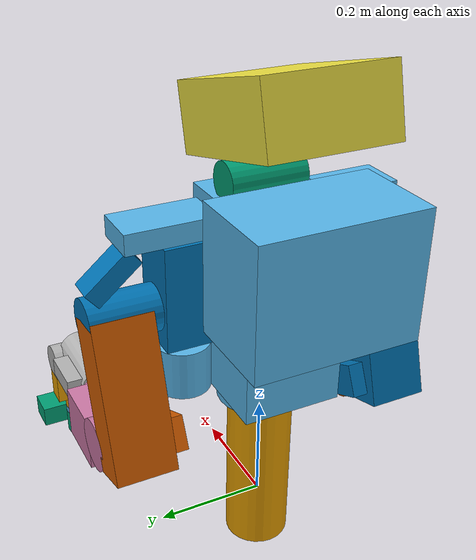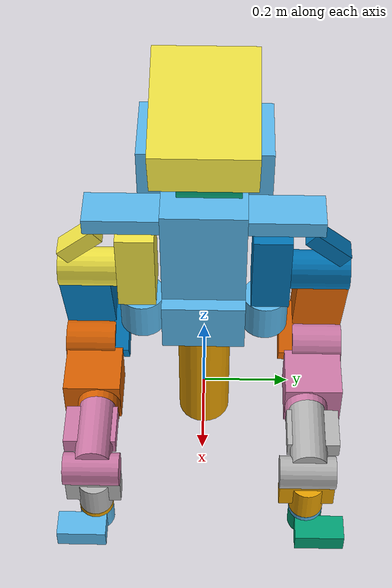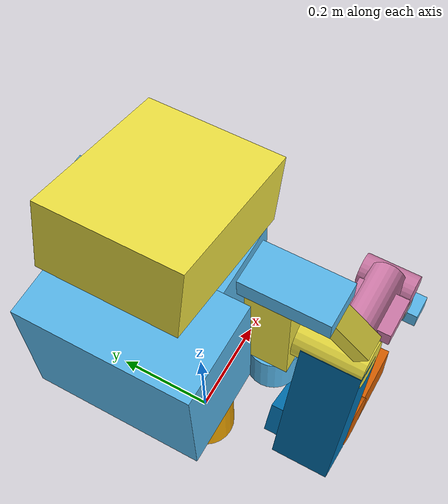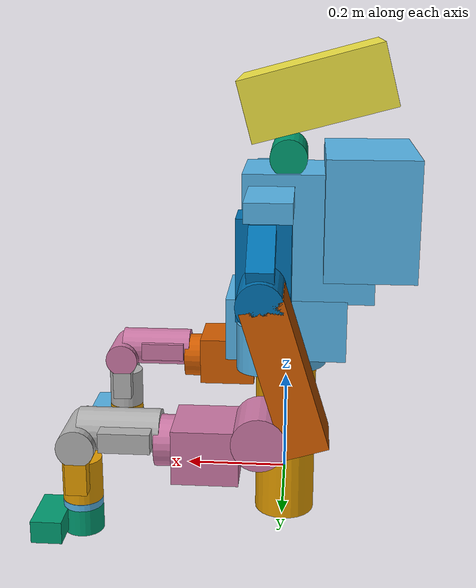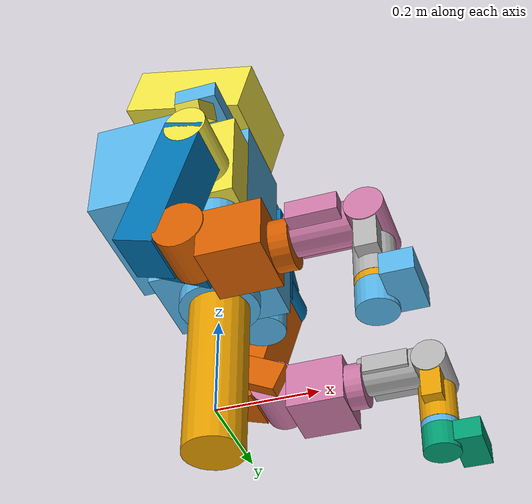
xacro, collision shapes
<?xml version="1.0"?>
<robot xmlns:xacro="http://ros.org/wiki/xacro">

  <xacro:include filename="$(find nextagea_description)/urdf/common.xacro" />

  <xacro:property name="namespace" default="/nextagea/" />
  <xacro:property name="nextagea_gazebo_ros_control" default="true" />

  <xacro:gazebo_nx_link name="WAIST" color="Black" />
  <link name="WAIST">
    <visual>
      <origin xyz="0 0 0" rpy="0 0 0"/>
      <geometry>
	      <mesh filename="package://nextagea_description/urdf/meshes/WAIST_Link_mesh.dae"/>
      </geometry>
    </visual>
    <collision>
      <origin xyz="0.0 0 0.098" rpy="0 0 0"/>
      <geometry>
        <cylinder length="0.376" radius="0.06"/>
      </geometry>
    </collision>
    <inertial>
      <mass value="5" />
      <origin xyz="0 0 0.15" rpy="0 0 0"/>
      <xacro:nxa_box_inertia_def x="0.2" y="0.2" z="0.3" mass="5"/>
    </inertial>
  </link>

  <xacro:gazebo_nx_link name="CHEST_JOINT0_Link" color="Black" />
  <link name="CHEST_JOINT0_Link">
    <visual>
      <origin xyz="0 0 0" rpy="0 0 0"/>
      <geometry>
	      <mesh filename="package://nextagea_description/urdf/meshes/CHEST_JOINT0_Link_mesh.dae"/>
      </geometry>
    </visual>
    <collision>
      <origin xyz="0 0 0.1575" rpy="0 0 0"/>
      <geometry>
        <cylinder length="0.385" radius="0.08"/>
      </geometry>
    </collision>
    <collision>
      <origin xyz="0.04 0.135 0.0423" rpy="0 0 0"/>
      <geometry>
        <cylinder length="0.09" radius="0.05"/>
      </geometry>
    </collision>
    <collision>
      <origin xyz="0.04 -0.135 0.0423" rpy="0 0 0"/>
      <geometry>
        <cylinder length="0.09" radius="0.05"/>
      </geometry>
    </collision>
    <collision>
      <origin xyz="0 0 0.055" rpy="0 0 0"/>
      <geometry>
        <box size="0.23 0.18 0.12"/>
      </geometry>
    </collision>
    <collision>
      <origin xyz="-0.04 0 0.2325" rpy="0 0 0"/>
      <geometry>
        <box size="0.25 0.18 0.245"/>
      </geometry>
    </collision>
    <collision>
      <origin xyz="-0.1525 0 0.279" rpy="0 0 0"/>
      <geometry>
        <box size="0.17 0.29 0.225"/>
      </geometry>
    </collision>
    <collision>
      <origin xyz="0.03 0 0.315" rpy="0 0 0"/>
      <geometry>
        <box size="0.085 0.5 0.0365"/>
      </geometry>
    </collision>
    <inertial>
      <mass value="10.0" />
      <origin xyz="0 0 0.2" rpy="0 -0 0"/>
      <xacro:nxa_box_inertia_def x="0.25" y="0.25" z="0.3" mass="10"/>
    </inertial>
  </link>

  <xacro:gazebo_nx_link name="HEAD_JOINT0_Link" color="Black" />
  <link name="HEAD_JOINT0_Link">
    <visual>
      <origin xyz="0 0 0" rpy="0 0 0"/>
      <geometry>
	      <mesh filename="package://nextagea_description/urdf/meshes/HEAD_JOINT0_Link_mesh.dae"/>
      </geometry>
    </visual>
    <collision>
      <origin xyz="0 0.01 0.08" rpy="1.57079 0 0"/>
      <geometry>
        <cylinder length="0.135" radius="0.035"/>
      </geometry>
    </collision>
     <inertial>
      <mass value="0.317929" />
      <origin xyz="0 0.00547848 0" rpy="0 -0 0"/>
      <xacro:nxa_box_inertia_def x="0.1" y="0.1" z="0.1" mass="0.317929"/>
    </inertial>
  </link>

  <xacro:gazebo_nx_link name="HEAD_JOINT1_Link" color="Black" />
  <link name="HEAD_JOINT1_Link">
    <visual>
      <origin xyz="0 0 0" rpy="0 0 0"/>
      <geometry>
	      <mesh filename="package://nextagea_description/urdf/meshes/HEAD_JOINT1_Link_mesh.dae"/>
      </geometry>
    </visual>
    <collision>
      <origin xyz="-0.05 0 0.12" rpy="0 0.26 0"/>
      <geometry>
        <box size="0.27 0.22 0.115"/>
      </geometry>
    </collision>
    <inertial>
      <mass value="0.4" />
      <origin xyz="-0.05 0 0.12" rpy="0 0.26 0"/>
      <xacro:nxa_box_inertia_def x="0.27" y="0.22" z="0.115" mass="0.4"/>
    </inertial>
  </link>

  <xacro:gazebo_nx_link name="LARM_JOINT0_Link" color="Black" />
  <link name="LARM_JOINT0_Link">
    <visual>
      <origin xyz="0 0 0" rpy="0 0 0"/>
      <geometry>
	      <mesh filename="package://nextagea_description/urdf/meshes/LARM_JOINT0_Link_mesh.dae"/>
      </geometry>
    </visual>
    <collision>
      <origin xyz="0 0.00775 0.095" rpy="0 0 0"/>
      <geometry>
        <box size="0.1 0.0815 0.19"/>
      </geometry>
    </collision>
    <collision>
      <origin xyz="0 0.0875 0.066" rpy="1.57079 0 0"/>
      <geometry>
        <cylinder length="0.175" radius="0.042"/>
      </geometry>
    </collision>
    <collision>
      <origin xyz="0 0.125 0.145" rpy="-0.7 0 0"/>
      <geometry>
        <box size="0.048 0.1 0.035"/>
      </geometry>
    </collision>
    <inertial>
      <mass value="1.32626" />
      <origin xyz="0.0 0.05 0.05" rpy="0 -0 0"/>
      <inertia ixx="0.00207537" ixy="0.00011276" ixz="8.927e-05" iyy="0.00240295" iyz="-4.57e-05" izz="0.00141912"/>
    </inertial>
  </link>

  <xacro:gazebo_nx_link name="LARM_JOINT1_Link" color="Black" />
  <link name="LARM_JOINT1_Link">
    <visual>
      <origin xyz="0 0 0" rpy="0 0 0"/>
      <geometry>
	      <mesh filename="package://nextagea_description/urdf/meshes/LARM_JOINT1_Link_mesh.dae"/>
      </geometry>
    </visual>
    <collision>
      <origin xyz="-0.043 0.12 -0.13" rpy="0 0.3 0"/>
      <geometry>
        <box size="0.08 0.11 0.28"/>
      </geometry>
    </collision>
    <collision>
      <origin xyz="-0.03 0.0518 -0.236" rpy="0 0.45 0"/>
      <geometry>
        <box size="0.122 0.0338 0.062"/>
      </geometry>
    </collision>
     <inertial>
      <mass value="1.14898" />
      <origin xyz="-0.04 0.1 -0.12" rpy="0 -0 0"/>
      <inertia ixx="0.0154168" ixy="9.95417e-07" ixz="3.38147e-06" iyy="0.0147117" iyz="0.00213719" izz="0.0012658"/>
    </inertial>
  </link>

  <xacro:gazebo_nx_link name="LARM_JOINT2_Link" color="Black" />
  <link name="LARM_JOINT2_Link">
    <visual>
      <origin xyz="0 0 0" rpy="0 0 0"/>
      <geometry>
	      <mesh filename="package://nextagea_description/urdf/meshes/LARM_JOINT2_Link_mesh.dae"/>
      </geometry>
    </visual>
    <collision>
      <origin xyz="0 0.025 0" rpy="1.57079 0 0"/>
      <geometry>
        <cylinder length="0.11" radius="0.049"/>
      </geometry>
    </collision>
    <collision>
      <origin xyz="0.0945 0.015 -0.03" rpy="0 0 0"/>
      <geometry>
        <box size="0.119 0.125 0.1"/>
      </geometry>
    </collision>
    <collision>
      <origin xyz="0.17 0 -0.03" rpy="0 1.57079 0"/>
      <geometry>
        <cylinder length="0.04" radius="0.047"/>
      </geometry>
    </collision>
    <inertial>
      <mass value="0.577518" />
      <origin xyz="0.1 0.01167107 -0.04" rpy="0 -0 0"/>
      <inertia ixx="0.00143966" ixy="-3e-07" ixz="1.2e-06" iyy="0.00141763" iyz="-7.596e-05" izz="0.0001972"/>
    </inertial>
  </link>

  <xacro:gazebo_nx_link name="LARM_JOINT3_Link" color="Black" />
  <link name="LARM_JOINT3_Link">
    <visual>
      <origin xyz="0 0 0" rpy="0 0 0"/>
      <geometry>
	      <mesh filename="package://nextagea_description/urdf/meshes/LARM_JOINT3_Link_mesh.dae"/>
      </geometry>
    </visual>
    <collision>
      <origin xyz="0.1495 -0.003 0" rpy="1.57079 0 0"/>
      <geometry>
        <cylinder length="0.12" radius="0.035"/>
      </geometry>
    </collision>
    <collision>
      <origin xyz="0.075 0.0 0.018" rpy="0 1.57079 0"/>
      <geometry>
        <cylinder length="0.15" radius="0.04"/>
      </geometry>
    </collision>
    <collision>
      <origin xyz="0.0585 0.01 0.0185" rpy="0 0 0"/>
      <geometry>
        <box size="0.093 0.112 0.037"/>
      </geometry>
    </collision>
    <inertial>
      <mass value="0.457418" />
      <origin xyz="0.1 -0.00395812 -0.00273" rpy="0 -0 0"/>
      <inertia ixx="0.00069205" ixy="3e-08" ixz="5.2e-07" iyy="0.00068903" iyz="-1.915e-05" izz="0.00013509"/>
    </inertial>
  </link>

  <xacro:gazebo_nx_link name="LARM_JOINT4_Link" color="Black" />
  <link name="LARM_JOINT4_Link">
    <visual>
      <origin xyz="0 0 0" rpy="0 0 0"/>
      <geometry>
	      <mesh filename="package://nextagea_description/urdf/meshes/LARM_JOINT4_Link_mesh.dae"/>
      </geometry>
    </visual>
    <collision>
      <origin xyz="0 -0.002 -0.06" rpy="0 0 0"/>
      <geometry>
        <box size="0.04 0.118 0.06"/>
      </geometry>
    </collision>
    <collision>
      <origin xyz="0 0 -0.08" rpy="0 0 0"/>
      <geometry>
        <cylinder length="0.08" radius="0.037"/>
      </geometry>
    </collision>
    <inertial>
      <mass value="0.418434" />
      <origin xyz="0.00243131 0.00379733 -0.0577036" rpy="0 -0 0"/>
      <inertia ixx="0.00052016" ixy="1.69e-06" ixz="7.9e-06" iyy="0.00050569" iyz="-5.377e-05" izz="0.00014004"/>
    </inertial>
  </link>

  <xacro:gazebo_nx_link name="LARM_JOINT5_Link" color="Black" />
  <link name="LARM_JOINT5_Link">
    <visual>
      <origin xyz="0 0 0" rpy="0 0 0"/>
      <geometry>
	      <mesh filename="package://nextagea_description/urdf/meshes/LARM_JOINT5_Link_mesh.dae"/>
      </geometry>
    </visual>
    <collision>
      <origin xyz="0 0 0.0065" rpy="0 0 0"/>
      <geometry>
        <cylinder length="0.013" radius="0.037"/>
      </geometry>
    </collision>
    <inertial>
      <mass value="1.05156" />
      <origin xyz="0.0 0.0 -0.08" rpy="0 -0 0"/>
      <inertia ixx="0.00194072" ixy="1.1e-07" ixz="-0.00042482" iyy="0.00209392" iyz="1.2e-07" izz="0.00035788"/>
    </inertial>
  </link>

  <xacro:gazebo_nx_link name="LARM_camera_Link" color="Black" />
  <link name="LARM_camera_Link">
    <visual>
      <origin xyz="0 0 0" rpy="0 0 0"/>
      <geometry>
        <mesh filename="package://nextagea_description/urdf/meshes/L_CAM.dae"/>
      </geometry>
    </visual>
    <collision>
      <origin xyz="0 0 -0.025" rpy="0 0 0"/>
      <geometry>
        <cylinder length="0.05" radius="0.037"/>
      </geometry>
    </collision>
    <collision>
      <origin xyz="0.0525 0.029 -0.02" rpy="0 0 0"/>
      <geometry>
        <box size="0.057 0.106 0.042"/>
      </geometry>
    </collision>
    <inertial>
      <mass value="1.05156" />
      <origin xyz="0.0 0.0 -0.08" rpy="0 -0 0"/>
      <inertia ixx="0.00194072" ixy="1.1e-07" ixz="-0.00042482" iyy="0.00209392" iyz="1.2e-07" izz="0.00035788"/>
    </inertial>
  </link>

  <xacro:gazebo_nx_link name="RARM_JOINT0_Link" color="Black" />
  <link name="RARM_JOINT0_Link">
    <visual>
      <origin xyz="0 0 0" rpy="0 0 0"/>
      <geometry>
	      <mesh filename="package://nextagea_description/urdf/meshes/RARM_JOINT0_Link_mesh.dae"/>
      </geometry>
    </visual>
    <collision>
      <origin xyz="0 -0.00775 0.095" rpy="0 0 0"/>
      <geometry>
        <box size="0.1 0.0815 0.19"/>
      </geometry>
    </collision>
    <collision>
      <origin xyz="0 -0.0875 0.066" rpy="1.57079 0 0"/>
      <geometry>
        <cylinder length="0.175" radius="0.042"/>
      </geometry>
    </collision>
    <collision>
      <origin xyz="0 -0.125 0.145" rpy="0.7 0 0"/>
      <geometry>
        <box size="0.048 0.1 0.035"/>
      </geometry>
    </collision>
    <inertial>
      <mass value="1.32626" />
      <origin xyz="0.0 -0.05 0.05" rpy="0 -0 0"/>
      <inertia ixx="0.00207537" ixy="-0.00011276" ixz="8.927e-05" iyy="0.00240295" iyz="4.57e-05" izz="0.00141912"/>
    </inertial>
  </link>

  <xacro:gazebo_nx_link name="RARM_JOINT1_Link" color="Black" />
  <link name="RARM_JOINT1_Link">
    <visual>
      <origin xyz="0 0 0" rpy="0 0 0"/>
      <geometry>
	      <mesh filename="package://nextagea_description/urdf/meshes/RARM_JOINT1_Link_mesh.dae"/>
      </geometry>
    </visual>
    <collision>
      <origin xyz="-0.043 -0.12 -0.13" rpy="0 0.3 0"/>
      <geometry>
        <box size="0.08 0.11 0.28"/>
      </geometry>
    </collision>
    <collision>
      <origin xyz="-0.03 -0.0518 -0.236" rpy="0 0.45 0"/>
      <geometry>
        <box size="0.122 0.0338 0.062"/>
      </geometry>
    </collision>
    <inertial>
      <mass value="1.14898" />
      <origin xyz="-0.04 -0.1 -0.12" rpy="0 -0 0"/>
      <inertia ixx="0.0154168" ixy="-9.95417e-07" ixz="3.38147e-06" iyy="0.0147117" iyz="-0.00213719" izz="0.0012658"/>
    </inertial>
  </link>

  <xacro:gazebo_nx_link name="RARM_JOINT2_Link" color="Black" />
  <link name="RARM_JOINT2_Link">
    <visual>
      <origin xyz="0 0 0" rpy="0 0 0"/>
      <geometry>
	      <mesh filename="package://nextagea_description/urdf/meshes/RARM_JOINT2_Link_mesh.dae"/>
      </geometry>
    </visual>
    <collision>
      <origin xyz="0 -0.025 0" rpy="1.57079 0 0"/>
      <geometry>
        <cylinder length="0.11" radius="0.049"/>
      </geometry>
    </collision>
    <collision>
      <origin xyz="0.0945 -0.015 -0.03" rpy="0 0 0"/>
      <geometry>
        <box size="0.119 0.125 0.1"/>
      </geometry>
    </collision>
    <collision>
      <origin xyz="0.17 0 -0.03" rpy="0 1.57079 0"/>
      <geometry>
        <cylinder length="0.04" radius="0.047"/>
      </geometry>
    </collision>
    <inertial>
      <mass value="0.577518" />
      <origin xyz="0.1 -0.01167107 -0.04" rpy="0 -0 0"/>
      <inertia ixx="0.00143966" ixy="3e-07" ixz="1.2e-06" iyy="0.00141763" iyz="7.596e-05" izz="0.0001972"/>
    </inertial>
  </link>

  <xacro:gazebo_nx_link name="RARM_JOINT3_Link" color="Black" />
  <link name="RARM_JOINT3_Link">
    <visual>
      <origin xyz="0 0 0" rpy="0 0 0"/>
      <geometry>
	      <mesh filename="package://nextagea_description/urdf/meshes/RARM_JOINT3_Link_mesh.dae"/>
      </geometry>
    </visual>
    <collision>
      <origin xyz="0.1495 -0.003 0" rpy="1.57079 0 0"/>
      <geometry>
        <cylinder length="0.12" radius="0.035"/>
      </geometry>
    </collision>
    <collision>
      <origin xyz="0.075 0.0 0.018" rpy="0 1.57079 0"/>
      <geometry>
        <cylinder length="0.15" radius="0.04"/>
      </geometry>
    </collision>
    <collision>
      <origin xyz="0.0585 -0.01 0.0185" rpy="0 0 0"/>
      <geometry>
        <box size="0.093 0.112 0.037"/>
      </geometry>
    </collision>
    <inertial>
      <mass value="0.457418" />
      <origin xyz="0.1 0.00395812 -0.00273" rpy="0 -0 0"/>
      <inertia ixx="0.00069205" ixy="-3e-08" ixz="5.2e-07" iyy="0.00068903" iyz="1.915e-05" izz="0.00013509"/>
    </inertial>
  </link>

  <xacro:gazebo_nx_link name="RARM_JOINT4_Link" color="Black" />
  <link name="RARM_JOINT4_Link">
    <visual>
      <origin xyz="0 0 0" rpy="0 0 0"/>
      <geometry>
	      <mesh filename="package://nextagea_description/urdf/meshes/RARM_JOINT4_Link_mesh.dae"/>
      </geometry>
    </visual>
    <collision>
      <origin xyz="0 -0.002 -0.06" rpy="0 0 0"/>
      <geometry>
        <box size="0.04 0.118 0.06"/>
      </geometry>
    </collision>
    <collision>
      <origin xyz="0 0 -0.08" rpy="0 0 0"/>
      <geometry>
        <cylinder length="0.08" radius="0.037"/>
      </geometry>
    </collision>
    <inertial>
      <mass value="0.418434" />
      <origin xyz="0.00243131 -0.00379733 -0.0577036" rpy="0 -0 0"/>
      <inertia ixx="0.00052016" ixy="-1.69e-06" ixz="7.9e-06" iyy="0.00050569" iyz="5.377e-05" izz="0.00014004"/>
    </inertial>
  </link>

  <xacro:gazebo_nx_link name="RARM_JOINT5_Link" color="Black" />
  <link name="RARM_JOINT5_Link">
    <visual>
      <origin xyz="0 0 0" rpy="0 0 0"/>
      <geometry>
	      <mesh filename="package://nextagea_description/urdf/meshes/RARM_JOINT5_Link_mesh.dae"/>
      </geometry>
    </visual>
    <collision>
      <origin xyz="0 0 0.0065" rpy="0 0 0"/>
      <geometry>
        <cylinder length="0.013" radius="0.037"/>
      </geometry>
    </collision>
    <inertial>
      <mass value="1.05156" />
      <origin xyz="0.0 0.0 -0.08" rpy="0 -0 0"/>
      <inertia ixx="0.00194072" ixy="-1.1e-07" ixz="-0.00042482" iyy="0.00209392" iyz="-1.2e-07" izz="0.00035788"/>
    </inertial>
  </link>

  <xacro:gazebo_nx_link name="RARM_camera_Link" color="Black" />
  <link name="RARM_camera_Link">
    <visual>
      <origin xyz="0 0 0" rpy="0 0 0"/>
      <geometry>
        <mesh filename="package://nextagea_description/urdf/meshes/R_CAM.dae"/>
      </geometry>
    </visual>
    <collision>
      <origin xyz="0 0 -0.025" rpy="0 0 0"/>
      <geometry>
        <cylinder length="0.05" radius="0.037"/>
      </geometry>
    </collision>
    <collision>
      <origin xyz="0.0525 -0.029 -0.02" rpy="0 0 0"/>
      <geometry>
        <box size="0.057 0.106 0.042"/>
      </geometry>
    </collision>
    <inertial>
      <mass value="1.05156" />
      <origin xyz="0.0 0.0 -0.08" rpy="0 -0 0"/>
      <inertia ixx="0.00194072" ixy="-1.1e-07" ixz="-0.00042482" iyy="0.00209392" iyz="-1.2e-07" izz="0.00035788"/>
    </inertial>
  </link>

  <xacro:transmission_nx_joint name="CHEST_JOINT0" />
  <joint name="CHEST_JOINT0" type="revolute">
    <parent link="WAIST"/>
    <child link="CHEST_JOINT0_Link"/>
    <origin xyz="0 0 0.267" rpy="0 0 0"/>
    <axis xyz="0 0 1"/>
    <limit lower="-3.14159" upper="3.14159" effort="100" velocity="1.0"/>
    <dynamics damping="0.2" friction="0"/>
  </joint>

  <xacro:transmission_nx_joint name="HEAD_JOINT0" />
  <joint name="HEAD_JOINT0" type="revolute">
    <parent link="CHEST_JOINT0_Link"/>
    <child link="HEAD_JOINT0_Link"/>
    <origin xyz="0 0 0.302" rpy="0 0 0"/>
    <axis xyz="0 0 1"/>
    <limit lower="-1.22173" upper="1.22173" effort="100" velocity="1.0"/>
  </joint>

  <xacro:transmission_nx_joint name="HEAD_JOINT1" />
  <joint name="HEAD_JOINT1" type="revolute">
    <parent link="HEAD_JOINT0_Link"/>
    <child link="HEAD_JOINT1_Link"/>
    <origin xyz="0 0 0.08" rpy="0 0 0"/>
    <axis xyz="0 1 0"/>
    <limit lower="-0.401425" upper="1.308997" effort="100" velocity="1.0"/>
  </joint>

  <xacro:transmission_nx_joint name="LARM_JOINT0" />
  <joint name="LARM_JOINT0" type="revolute">
    <parent link="CHEST_JOINT0_Link"/>
    <child link="LARM_JOINT0_Link"/>
    <origin xyz="0.04 0.135 0.1015" rpy="0 0 0"/>
    <axis xyz="0 0 1"/>
    <limit lower="-1.5707963" upper="1.5707963" effort="150" velocity="1.0"/>
    <dynamics damping="0.5" friction="0.5"/>
  </joint>

  <xacro:transmission_nx_joint name="LARM_JOINT1" />
  <joint name="LARM_JOINT1" type="revolute">
    <parent link="LARM_JOINT0_Link"/>
    <child link="LARM_JOINT1_Link"/>
    <origin xyz="0 0 0.066" rpy="0 0 0"/>
    <axis xyz="0 1 0"/>
    <limit lower="-2.44346" upper="1.0471975" effort="150" velocity="1.0"/>
    <dynamics damping="0.5" friction="0.5"/>
  </joint>

  <xacro:transmission_nx_joint name="LARM_JOINT2" />
  <joint name="LARM_JOINT2" type="revolute">
    <parent link="LARM_JOINT1_Link"/>
    <child link="LARM_JOINT2_Link"/>
    <origin xyz="0 0.095 -0.25" rpy="0 0 0"/>
    <axis xyz="0 1 0"/>
    <limit lower="-1.22173" upper="1.5707963" effort="150" velocity="1.0"/>
    <dynamics damping="0.5" friction="0.5"/>
  </joint>

  <xacro:transmission_nx_joint name="LARM_JOINT3" />
  <joint name="LARM_JOINT3" type="revolute">
    <parent link="LARM_JOINT2_Link"/>
    <child link="LARM_JOINT3_Link"/>
    <origin xyz="0.1805 0 -0.03" rpy="0 0 0"/>
    <axis xyz="1 0 0"/>
    <limit lower="-3.1415926" upper="1.7453292" effort="150" velocity="1.0"/>
    <dynamics damping="0.5" friction="0.5"/>
  </joint>

  <xacro:transmission_nx_joint name="LARM_JOINT4" />
  <joint name="LARM_JOINT4" type="revolute">
    <parent link="LARM_JOINT3_Link"/>
    <child link="LARM_JOINT4_Link"/>
    <origin xyz="0.1495 0 0" rpy="0 0 0"/>
    <axis xyz="0 1 0"/>
    <limit lower="-3.57792" upper="1.134464" effort="150" velocity="1.0"/>
    <dynamics damping="0.5" friction="0.5"/>
  </joint>

  <xacro:transmission_nx_joint name="LARM_JOINT5" />
  <joint name="LARM_JOINT5" type="revolute">
    <parent link="LARM_JOINT4_Link"/>
    <child link="LARM_JOINT5_Link"/>
    <origin xyz="0 0 -0.1335" rpy="0 0 0"/>
    <axis xyz="0 0 1"/>
    <limit lower="-2.7123889" upper="2.7123889" effort="150" velocity="1.0"/>
    <dynamics damping="0.5" friction="0.5"/>
  </joint>

  <joint name="LARM_JOINT6" type="fixed">
    <parent link="LARM_JOINT5_Link"/>
    <child link="LARM_camera_Link"/>
    <origin xyz="0 0 0" rpy="0 0 0"/>
    <axis xyz="0 0 1"/>
  </joint>

  <xacro:transmission_nx_joint name="RARM_JOINT0" />
  <joint name="RARM_JOINT0" type="revolute">
    <parent link="CHEST_JOINT0_Link"/>
    <child link="RARM_JOINT0_Link"/>
    <origin xyz="0.04 -0.135 0.1015" rpy="0 0 0"/>
    <axis xyz="0 0 1"/>
    <limit lower="-1.570796" upper="1.570796" effort="150" velocity="1.0"/>
    <dynamics damping="0.5" friction="0.5"/>
  </joint>

  <xacro:transmission_nx_joint name="RARM_JOINT1" />
  <joint name="RARM_JOINT1" type="revolute">
    <parent link="RARM_JOINT0_Link"/>
    <child link="RARM_JOINT1_Link"/>
    <origin xyz="0 0 0.066" rpy="0 0 0"/>
    <axis xyz="0 1 0"/>
    <limit lower="-2.44346" upper="1.047197" effort="150" velocity="1.0"/>
    <dynamics damping="0.5" friction="0.5"/>
  </joint>

  <xacro:transmission_nx_joint name="RARM_JOINT2" />
  <joint name="RARM_JOINT2" type="revolute">
    <parent link="RARM_JOINT1_Link"/>
    <child link="RARM_JOINT2_Link"/>
    <origin xyz="0 -0.095 -0.25" rpy="0 0 0"/>
    <axis xyz="0 1 0"/>
    <limit lower="-1.22173" upper="1.570796" effort="150" velocity="1.0"/>
    <dynamics damping="0.5" friction="0.5"/>
  </joint>

  <xacro:transmission_nx_joint name="RARM_JOINT3" />
  <joint name="RARM_JOINT3" type="revolute">
    <parent link="RARM_JOINT2_Link"/>
    <child link="RARM_JOINT3_Link"/>
    <origin xyz="0.1805 0 -0.03" rpy="0 0 0"/>
    <axis xyz="1 0 0"/>
    <limit lower="-1.74532" upper="3.141592" effort="150" velocity="1.0"/>
    <dynamics damping="0.5" friction="0.5"/>
  </joint>

  <xacro:transmission_nx_joint name="RARM_JOINT4" />
  <joint name="RARM_JOINT4" type="revolute">
    <parent link="RARM_JOINT3_Link"/>
    <child link="RARM_JOINT4_Link"/>
    <origin xyz="0.1495 0 0" rpy="0 0 0"/>
    <axis xyz="0 1 0"/>
    <limit lower="-3.5779" upper="1.134464" effort="150" velocity="1.0"/>
    <dynamics damping="0.5" friction="0.5"/>
  </joint>

  <xacro:transmission_nx_joint name="RARM_JOINT5" />
  <joint name="RARM_JOINT5" type="revolute">
    <parent link="RARM_JOINT4_Link"/>
    <child link="RARM_JOINT5_Link"/>
    <origin xyz="0 0 -0.1335" rpy="0 0 0"/>
    <axis xyz="0 0 1"/>
    <limit lower="-2.712388" upper="2.712388" effort="150" velocity="1.0"/>
    <dynamics damping="0.5" friction="0.5"/>
  </joint>

  <joint name="RARM_JOINT6" type="fixed">
    <parent link="RARM_JOINT5_Link"/>
    <child link="RARM_camera_Link"/>
    <origin xyz="0 0 0" rpy="0 0 0"/>
    <axis xyz="0 0 1"/>
  </joint>

  <!-- Gazebo plugin for ROS Control -->
  <xacro:if value="${nextagea_gazebo_ros_control}">
    <gazebo>
      <plugin name="gazebo_ros_control" filename="libgazebo_ros_control.so">
        <robotNamespace>${namespace}</robotNamespace>
      </plugin>
    </gazebo>
  </xacro:if>

  <!-- Gazebo-Specific Link Properties -->
  <gazebo reference="CHEST_JOINT0">
    <implicitSpringDamper>1</implicitSpringDamper>
  </gazebo>
  <gazebo reference="HEAD_JOINT0">
    <implicitSpringDamper>1</implicitSpringDamper>
  </gazebo>
  <gazebo reference="HEAD_JOINT1">
    <implicitSpringDamper>1</implicitSpringDamper>
  </gazebo>
  <gazebo reference="LARM_JOINT0">
    <implicitSpringDamper>1</implicitSpringDamper>
  </gazebo>
  <gazebo reference="LARM_JOINT1">
    <implicitSpringDamper>1</implicitSpringDamper>
  </gazebo>
  <gazebo reference="LARM_JOINT2">
    <implicitSpringDamper>1</implicitSpringDamper>
  </gazebo>
  <gazebo reference="LARM_JOINT3">
    <implicitSpringDamper>1</implicitSpringDamper>
  </gazebo>
  <gazebo reference="LARM_JOINT4">
    <implicitSpringDamper>1</implicitSpringDamper>
  </gazebo>
  <gazebo reference="LARM_JOINT5">
    <implicitSpringDamper>1</implicitSpringDamper>
  </gazebo>
  <gazebo reference="RARM_JOINT0">
    <implicitSpringDamper>1</implicitSpringDamper>
  </gazebo>
  <gazebo reference="RARM_JOINT1">
    <implicitSpringDamper>1</implicitSpringDamper>
  </gazebo>
  <gazebo reference="RARM_JOINT2">
    <implicitSpringDamper>1</implicitSpringDamper>
  </gazebo>
  <gazebo reference="RARM_JOINT3">
    <implicitSpringDamper>1</implicitSpringDamper>
  </gazebo>
  <gazebo reference="RARM_JOINT4">
    <implicitSpringDamper>1</implicitSpringDamper>
  </gazebo>
  <gazebo reference="RARM_JOINT5">
    <implicitSpringDamper>1</implicitSpringDamper>
  </gazebo>

</robot>

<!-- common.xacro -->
<robot xmlns:xacro="http://ros.org/wiki/xacro">

    <xacro:property name="nextagea_common_guard" default="true"/>
    <xacro:if value="${nextagea_common_guard}">
        <xacro:property name="nextagea_common_guard" value="false"/>

        <!-- Inertia macros -->
        <xacro:macro name="nxa_sphere_inertia_def" params="radius mass">
            <inertia ixx="${2/5*mass*radius*radius}" ixy="0" ixz="0" iyy="${2/5*mass*radius*radius}" iyz="0" izz="${2/5*mass*radius*radius}"/>
        </xacro:macro>
        <xacro:macro name="nxa_box_inertia_def" params="x y z mass">
            <inertia iyy="${mass*(z*z+x*x)/12.0}" ixx="${mass*(y*y+z*z)/12.0}" izz="${mass*(x*x+y*y)/12.0}" ixy="0.0" iyz="0.0" ixz="0.0"/>
        </xacro:macro>
        <xacro:macro name="nxa_cylinder_inertia_def" params="r h mass">
            <inertia ixx="${mass*(3*r*r+h*h)/12}" ixy="0" ixz="0" iyy="${mass*(3*r*r+h*h)/12}" iyz="0" izz="${mass*r*r/2}"/>
        </xacro:macro>

        <xacro:macro name="transmission_nx_joint" params="name">
            <transmission name="${name}_Trans">
            <type>transmission_interface/SimpleTransmission</type>
            <joint name="${name}">
                <hardwareInterface>hardware_interface/PositionJointInterface</hardwareInterface>
            </joint>
            <actuator name="${name}_Motor">
                <hardwareInterface>hardware_interface/PositionJointInterface</hardwareInterface>
                <mechanicalReduction>1</mechanicalReduction>
            </actuator>
            </transmission>
        </xacro:macro>

        <!-- Define contact properties -->
        <xacro:macro name="gazebo_nx_link" params="name color">
            <gazebo reference="gazebo_${name}">
            <material>Gazebo/${color}</material>
            <mu1 value="1.0" />
            <mu2 value="1.0" />
            <kp  value="1000000.0" />
            <kd  value="100.0" />
            <maxVel  value="100.0" />
            <minDepth  value="0.0" />
            </gazebo>
        </xacro:macro>

    </xacro:if>

    <xacro:macro name="sphere_inertia_def" params="radius mass">
        <inertia ixx="${2/5*mass*radius*radius}" ixy="0" ixz="0" iyy="${2/5*mass*radius*radius}" iyz="0" izz="${2/5*mass*radius*radius}"/>
    </xacro:macro>

</robot>
